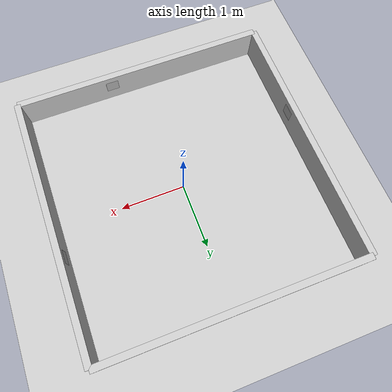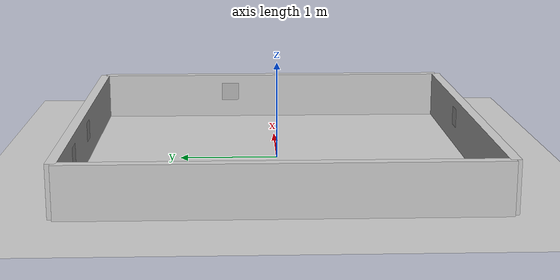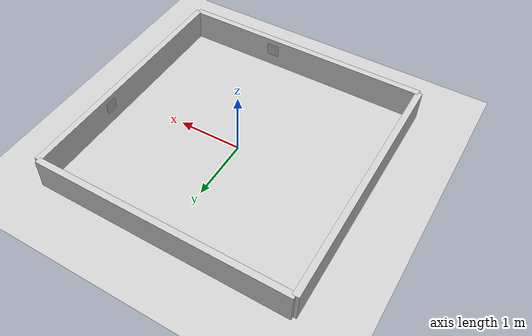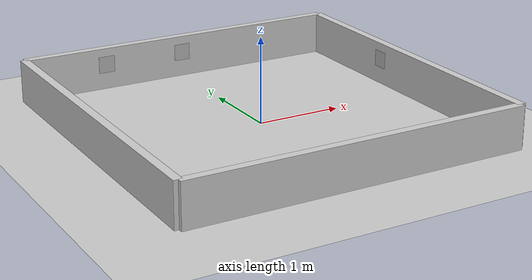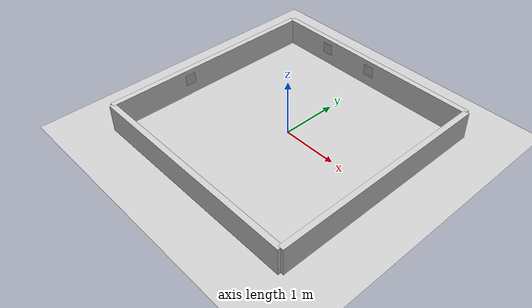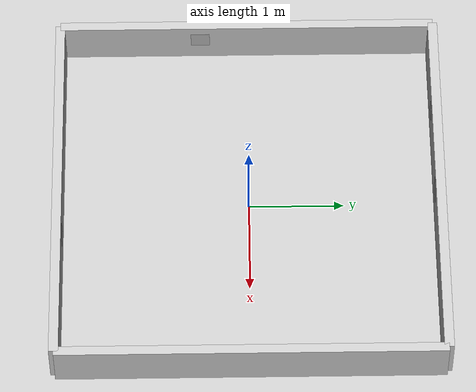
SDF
<?xml version="1.0" ?>
<sdf version='1.7'>
  <world name='aruco_demo_world'>

    <!-- Lighting -->
    <light name='sun' type='directional'>
      <cast_shadows>1</cast_shadows>
      <pose>0 0 10 0 -0 0</pose>
      <diffuse>0.8 0.8 0.8 1</diffuse>
      <specular>0.2 0.2 0.2 1</specular>
      <attenuation>
        <range>1000</range>
        <constant>0.9</constant>
        <linear>0.01</linear>
        <quadratic>0.001</quadratic>
      </attenuation>
      <direction>-0.5 0.1 -0.9</direction>
    </light>

    <!-- Ground Plane -->
    <model name='ground_plane'>
      <static>1</static>
      <link name='link'>
        <collision name='collision'>
          <geometry>
            <plane>
              <normal>0 0 1</normal>
              <size>100 100</size>
            </plane>
          </geometry>
        </collision>
        <visual name='visual'>
          <cast_shadows>0</cast_shadows>
          <geometry>
            <plane>
              <normal>0 0 1</normal>
              <size>100 100</size>
            </plane>
          </geometry>
          <material>
            <script>
              <uri>file://media/materials/scripts/gazebo.material</uri>
              <name>Gazebo/Grey</name>
            </script>
          </material>
        </visual>
      </link>
    </model>

    <!-- Physics -->
    <gravity>0 0 -9.8</gravity>
    <physics type='ode'>
      <max_step_size>0.001</max_step_size>
      <real_time_factor>1</real_time_factor>
      <real_time_update_rate>1000</real_time_update_rate>
    </physics>

    <!-- Scene -->
    <scene>
      <ambient>0.4 0.4 0.4 1</ambient>
      <background>0.7 0.7 0.7 1</background>
      <shadows>1</shadows>
    </scene>

    <!-- Simple Room - 4m x 4m -->

    <!-- North Wall -->
    <model name='north_wall'>
      <static>1</static>
      <pose>0 2 0.25 0 0 0</pose>
      <link name='link'>
        <collision name='collision'>
          <geometry>
            <box>
              <size>4 0.1 0.5</size>
            </box>
          </geometry>
        </collision>
        <visual name='visual'>
          <geometry>
            <box>
              <size>4 0.1 0.5</size>
            </box>
          </geometry>
          <material>
            <ambient>0.8 0.8 0.8 1</ambient>
            <diffuse>0.8 0.8 0.8 1</diffuse>
          </material>
        </visual>
      </link>
    </model>

    <!-- South Wall -->
    <model name='south_wall'>
      <static>1</static>
      <pose>0 -2 0.25 0 0 0</pose>
      <link name='link'>
        <collision name='collision'>
          <geometry>
            <box>
              <size>4 0.1 0.5</size>
            </box>
          </geometry>
        </collision>
        <visual name='visual'>
          <geometry>
            <box>
              <size>4 0.1 0.5</size>
            </box>
          </geometry>
          <material>
            <ambient>0.8 0.8 0.8 1</ambient>
            <diffuse>0.8 0.8 0.8 1</diffuse>
          </material>
        </visual>
      </link>
    </model>

    <!-- East Wall -->
    <model name='east_wall'>
      <static>1</static>
      <pose>2 0 0.25 0 0 1.5708</pose>
      <link name='link'>
        <collision name='collision'>
          <geometry>
            <box>
              <size>4 0.1 0.5</size>
            </box>
          </geometry>
        </collision>
        <visual name='visual'>
          <geometry>
            <box>
              <size>4 0.1 0.5</size>
            </box>
          </geometry>
          <material>
            <ambient>0.8 0.8 0.8 1</ambient>
            <diffuse>0.8 0.8 0.8 1</diffuse>
          </material>
        </visual>
      </link>
    </model>

    <!-- West Wall -->
    <model name='west_wall'>
      <static>1</static>
      <pose>-2 0 0.25 0 0 1.5708</pose>
      <link name='link'>
        <collision name='collision'>
          <geometry>
            <box>
              <size>4 0.1 0.5</size>
            </box>
          </geometry>
        </collision>
        <visual name='visual'>
          <geometry>
            <box>
              <size>4 0.1 0.5</size>
            </box>
          </geometry>
          <material>
            <ambient>0.8 0.8 0.8 1</ambient>
            <diffuse>0.8 0.8 0.8 1</diffuse>
          </material>
        </visual>
      </link>
    </model>

    <!-- Aruco Marker 0 - North Wall Center -->
    <model name='aruco_marker_0'>
      <static>1</static>
      <pose>0 1.95 0.3 0 0 0</pose>
      <link name='link'>
        <visual name='visual'>
          <geometry>
            <box>
              <size>0.2 0.001 0.2</size>
            </box>
          </geometry>
          <material>
            <script>
              <uri>model://aruco_visual_marker_0</uri>
              <name>aruco_visual_marker_0</name>
            </script>
          </material>
        </visual>
      </link>
    </model>

    <!-- Aruco Marker 1 - North Wall Left -->
    <model name='aruco_marker_1'>
      <static>1</static>
      <pose>-1 1.95 0.3 0 0 0</pose>
      <link name='link'>
        <visual name='visual'>
          <geometry>
            <box>
              <size>0.2 0.001 0.2</size>
            </box>
          </geometry>
          <material>
            <script>
              <uri>model://aruco_marker_1</uri>
              <name>ArucoMarker1</name>
            </script>
          </material>
        </visual>
      </link>
    </model>

    <!-- Aruco Marker 2 - East Wall -->
    <model name='aruco_marker_2'>
      <static>1</static>
      <pose>1.95 0.5 0.3 0 0 -1.5708</pose>
      <link name='link'>
        <visual name='visual'>
          <geometry>
            <box>
              <size>0.2 0.001 0.2</size>
            </box>
          </geometry>
          <material>
            <script>
              <uri>model://aruco_marker_2</uri>
              <name>ArucoMarker2</name>
            </script>
          </material>
        </visual>
      </link>
    </model>

    <!-- Aruco Marker 3 - South Wall -->
    <model name='aruco_marker_3'>
      <static>1</static>
      <pose>0.5 -1.95 0.3 0 0 3.14159</pose>
      <link name='link'>
        <visual name='visual'>
          <geometry>
            <box>
              <size>0.2 0.001 0.2</size>
            </box>
          </geometry>
          <material>
            <script>
              <uri>model://aruco_marker_3</uri>
              <name>ArucoMarker3</name>
            </script>
          </material>
        </visual>
      </link>
    </model>

    <!-- Aruco Marker 4 - West Wall -->
    <model name='aruco_marker_4'>
      <static>1</static>
      <pose>-1.95 -0.5 0.3 0 0 1.5708</pose>
      <link name='link'>
        <visual name='visual'>
          <geometry>
            <box>
              <size>0.2 0.001 0.2</size>
            </box>
          </geometry>
          <material>
            <script>
              <uri>model://aruco_marker_4</uri>
              <name>ArucoMarker4</name>
            </script>
          </material>
        </visual>
      </link>
    </model>

  </world>
</sdf>
